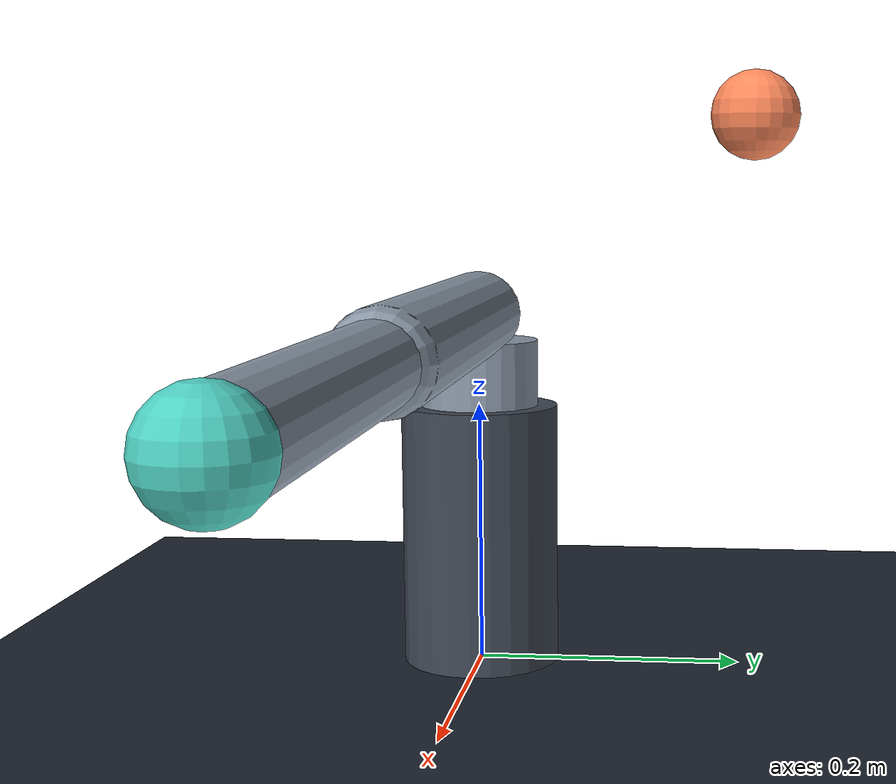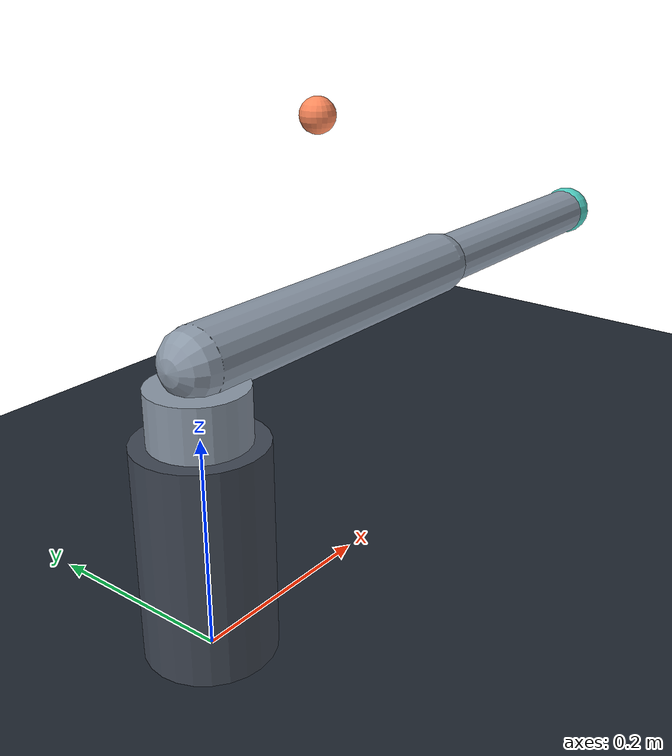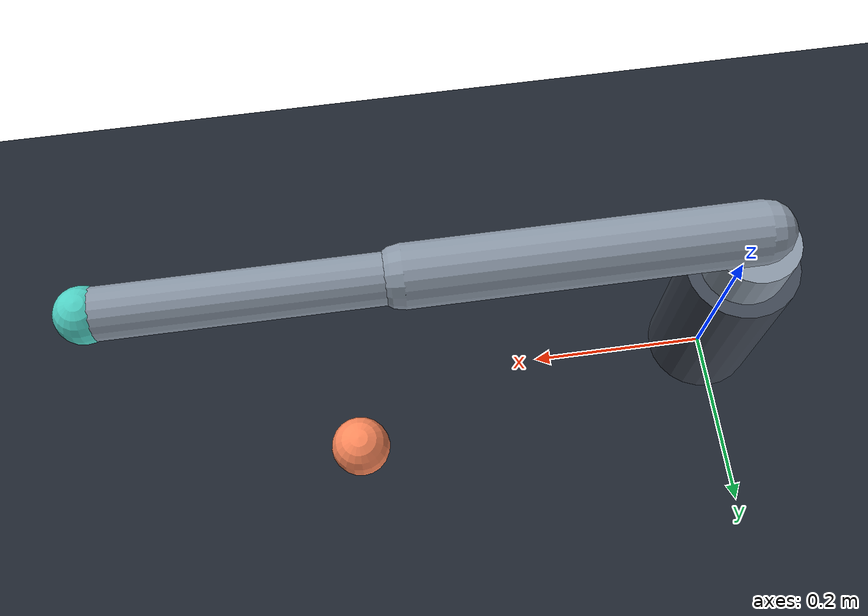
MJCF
<mujoco model="reach_arm">
  <compiler angle="radian"/>
  <option timestep="0.005" gravity="0 0 -9.81" integrator="implicitfast"/>
  <default>
    <joint armature="0.01" limited="true"/>
    <geom rgba="0.55 0.6 0.66 1" friction="0.8 0.005 0.0001"/>
    <motor ctrllimited="true" ctrlrange="-6 6" gear="1"/>
  </default>

  <worldbody>
    <light pos="0.6 -0.8 1.6" dir="-0.3 0.4 -1"/>
    <geom name="floor" type="plane" size="1.5 1.5 0.05" rgba="0.12 0.15 0.19 1"/>
    <geom name="pedestal" type="cylinder" size="0.06 0.10" pos="0 0 0.10" rgba="0.25 0.28 0.33 1" contype="0" conaffinity="0"/>

    <body name="base" pos="0 0 0.22">
      <joint name="yaw" type="hinge" axis="0 0 1" range="-2.6 2.6"
             damping="0.5" frictionloss="0.3"/>
      <geom type="cylinder" size="0.045 0.03"/>
      <body name="upperarm" pos="0 0 0.05" gravcomp="1">
        <joint name="shoulder" type="hinge" axis="0 1 0" range="-1.3 1.3"
               damping="0.4" frictionloss="0.25"/>
        <geom type="capsule" fromto="0 0 0 0.35 0 0" size="0.032" mass="0.6"/>
        <body name="forearm" pos="0.35 0 0" gravcomp="1">
          <joint name="elbow" type="hinge" axis="0 1 0" range="-2.4 2.4"
                 damping="0.2" frictionloss="0.15"/>
          <geom type="capsule" fromto="0 0 0 0.30 0 0" size="0.026" mass="0.35"/>
          <body name="payload" pos="0.30 0 0" gravcomp="1">
            <geom name="tip" type="sphere" size="0.028" mass="0.25"
                  rgba="0.31 0.82 0.77 1"/>
            <site name="fingertip" pos="0 0 0" size="0.005"/>
          </body>
        </body>
      </body>
    </body>

    <body name="target" pos="0.4 0.2 0.4">
      <geom name="target_geom" type="sphere" size="0.022" rgba="1 0.54 0.36 0.9"
            contype="0" conaffinity="0"/>
      <site name="target_site" pos="0 0 0" size="0.004"/>
    </body>
  </worldbody>

  <actuator>
    <motor name="m_yaw" joint="yaw"/>
    <motor name="m_shoulder" joint="shoulder"/>
    <motor name="m_elbow" joint="elbow"/>
  </actuator>
</mujoco>
